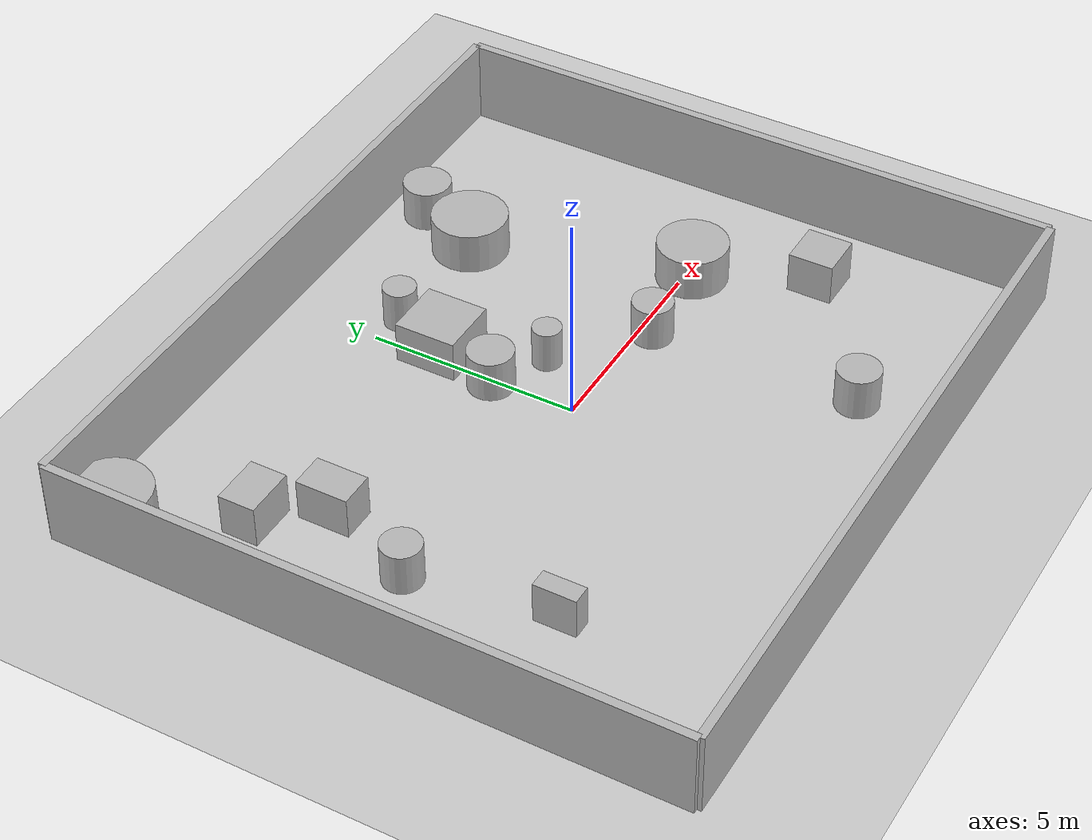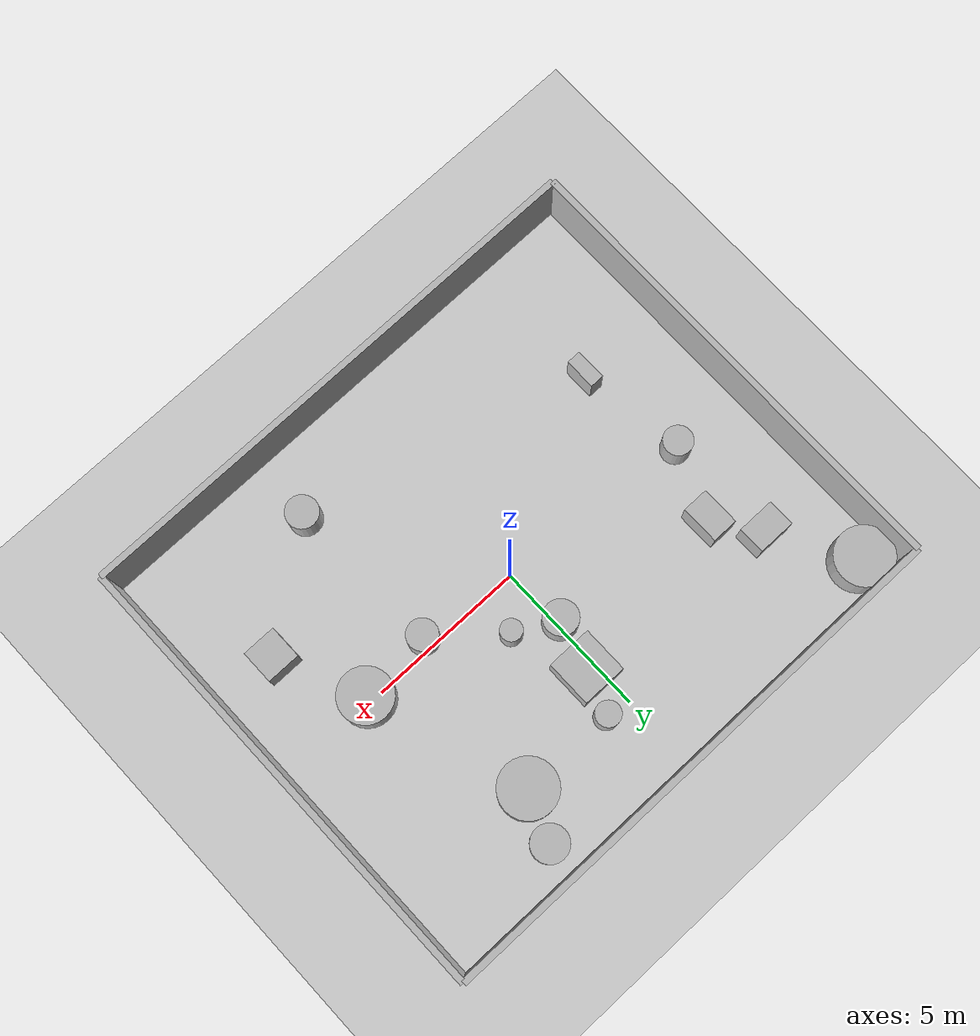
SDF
<?xml version="1.0"?>
<sdf version="1.6">
  <world name="env_87">

    <include><uri>model://ground_plane</uri></include>
    <include><uri>model://sun</uri></include>

    <!-- WALLS -->
    <model name="wall_north"><static>true</static><pose>0 7.412446972786869 1 0 0 0</pose>
      <link name="link"><collision name="collision">
        <geometry><box><size>17.123455979677402 0.2 2</size></box></geometry>
      </collision><visual name="visual">
        <geometry><box><size>17.123455979677402 0.2 2</size></box></geometry>
      </visual></link>
    </model>

    <model name="wall_south"><static>true</static><pose>0 -7.412446972786869 1 0 0 0</pose>
      <link name="link"><collision name="collision">
        <geometry><box><size>17.123455979677402 0.2 2</size></box></geometry>
      </collision><visual name="visual">
        <geometry><box><size>17.123455979677402 0.2 2</size></box></geometry>
      </visual></link>
    </model>

    <model name="wall_east"><static>true</static><pose>8.561727989838701 0 1 0 0 1.57</pose>
      <link name="link"><collision name="collision">
        <geometry><box><size>14.824893945573738 0.2 2</size></box></geometry>
      </collision><visual name="visual">
        <geometry><box><size>14.824893945573738 0.2 2</size></box></geometry>
      </visual></link>
    </model>

    <model name="wall_west"><static>true</static><pose>-8.561727989838701 0 1 0 0 1.57</pose>
      <link name="link"><collision name="collision">
        <geometry><box><size>14.824893945573738 0.2 2</size></box></geometry>
      </collision><visual name="visual">
        <geometry><box><size>14.824893945573738 0.2 2</size></box></geometry>
      </visual></link>
    </model>

    <!-- SENSOR -->

    <model name="lidar_sensor">
      <static>true</static>
      <pose>-3.7037397548065716 -0.33764008833407466 0.4 0 0 0</pose>
      <link name="link">
        <sensor name="lidar" type="ray">
          <pose>0 0 0 0 0 0</pose>
          <visualize>true</visualize>
          <always_on>true</always_on>
          <update_rate>10</update_rate>
          <ray>
            <scan><horizontal>
              <samples>90</samples>
              <resolution>1</resolution>
              <min_angle>-3.14159</min_angle>
              <max_angle>3.14159</max_angle>
            </horizontal></scan>
            <range><min>0.15</min><max>20.0</max><resolution>0.01</resolution></range>
          </ray>
          <plugin name="lidar_plugin" filename="liblidar_plugin.so"/>
        </sensor>
      </link>
    </model>

    <!-- OBSTACLES -->

    <model name="obstacle_0">
      <static>true</static>
      <pose>-5.233418437240611 2.7270778595490786 0.5 0 0 0</pose>
      <link name="link">
        <collision name="collision">
          <geometry><box><size>0.83 1.23 1.0</size></box></geometry>
        </collision>
        <visual name="visual">
          <geometry><box><size>0.83 1.23 1.0</size></box></geometry>
        </visual>
      </link>
    </model>

    <model name="obstacle_1">
      <static>true</static>
      <pose>-7.62489662363091 6.546410378304753 0.5 0 0 0</pose>
      <link name="link">
        <collision name="collision">
          <geometry><cylinder><radius>0.91</radius><length>1.0</length></cylinder></geometry>
        </collision>
        <visual name="visual">
          <geometry><cylinder><radius>0.91</radius><length>1.0</length></cylinder></geometry>
        </visual>
      </link>
    </model>

    <model name="obstacle_2">
      <static>true</static>
      <pose>1.156582110647257 1.2856869917716072 0.5 0 0 0</pose>
      <link name="link">
        <collision name="collision">
          <geometry><cylinder><radius>0.34</radius><length>1.0</length></cylinder></geometry>
        </collision>
        <visual name="visual">
          <geometry><cylinder><radius>0.34</radius><length>1.0</length></cylinder></geometry>
        </visual>
      </link>
    </model>

    <model name="obstacle_3">
      <static>true</static>
      <pose>3.075483656167501 -0.32262732376189174 0.5 0 0 0</pose>
      <link name="link">
        <collision name="collision">
          <geometry><cylinder><radius>0.48</radius><length>1.0</length></cylinder></geometry>
        </collision>
        <visual name="visual">
          <geometry><cylinder><radius>0.48</radius><length>1.0</length></cylinder></geometry>
        </visual>
      </link>
    </model>

    <model name="obstacle_4">
      <static>true</static>
      <pose>-6.176577238787507 4.045409829347246 0.5 0 0 0</pose>
      <link name="link">
        <collision name="collision">
          <geometry><box><size>1.2 0.87 1.0</size></box></geometry>
        </collision>
        <visual name="visual">
          <geometry><box><size>1.2 0.87 1.0</size></box></geometry>
        </visual>
      </link>
    </model>

    <model name="obstacle_5">
      <static>true</static>
      <pose>0.7786783943032951 4.843770767298446 0.5 0 0 0</pose>
      <link name="link">
        <collision name="collision">
          <geometry><cylinder><radius>0.39</radius><length>1.0</length></cylinder></geometry>
        </collision>
        <visual name="visual">
          <geometry><cylinder><radius>0.39</radius><length>1.0</length></cylinder></geometry>
        </visual>
      </link>
    </model>

    <model name="obstacle_6">
      <static>true</static>
      <pose>-5.6139556492050335 -2.8470840220336378 0.5 0 0 0</pose>
      <link name="link">
        <collision name="collision">
          <geometry><box><size>0.45 1.0 1.0</size></box></geometry>
        </collision>
        <visual name="visual">
          <geometry><box><size>0.45 1.0 1.0</size></box></geometry>
        </visual>
      </link>
    </model>

    <model name="obstacle_7">
      <static>true</static>
      <pose>3.810217809905465 4.831261215041058 0.5 0 0 0</pose>
      <link name="link">
        <collision name="collision">
          <geometry><cylinder><radius>0.9</radius><length>1.0</length></cylinder></geometry>
        </collision>
        <visual name="visual">
          <geometry><cylinder><radius>0.9</radius><length>1.0</length></cylinder></geometry>
        </visual>
      </link>
    </model>

    <model name="obstacle_8">
      <static>true</static>
      <pose>3.213558167966017 -5.263181860221413 0.5 0 0 0</pose>
      <link name="link">
        <collision name="collision">
          <geometry><cylinder><radius>0.51</radius><length>1.0</length></cylinder></geometry>
        </collision>
        <visual name="visual">
          <geometry><cylinder><radius>0.51</radius><length>1.0</length></cylinder></geometry>
        </visual>
      </link>
    </model>

    <model name="obstacle_9">
      <static>true</static>
      <pose>-0.11357347440852372 1.9722921025433902 0.5 0 0 0</pose>
      <link name="link">
        <collision name="collision">
          <geometry><cylinder><radius>0.54</radius><length>1.0</length></cylinder></geometry>
        </collision>
        <visual name="visual">
          <geometry><cylinder><radius>0.54</radius><length>1.0</length></cylinder></geometry>
        </visual>
      </link>
    </model>

    <model name="obstacle_10">
      <static>true</static>
      <pose>5.384870050377177 -0.13072308460824988 0.5 0 0 0</pose>
      <link name="link">
        <collision name="collision">
          <geometry><cylinder><radius>0.84</radius><length>1.0</length></cylinder></geometry>
        </collision>
        <visual name="visual">
          <geometry><cylinder><radius>0.84</radius><length>1.0</length></cylinder></geometry>
        </visual>
      </link>
    </model>

    <model name="obstacle_11">
      <static>true</static>
      <pose>6.556365277114031 -2.776765092362276 0.5 0 0 0</pose>
      <link name="link">
        <collision name="collision">
          <geometry><box><size>1.07 1.07 1.0</size></box></geometry>
        </collision>
        <visual name="visual">
          <geometry><box><size>1.07 1.07 1.0</size></box></geometry>
        </visual>
      </link>
    </model>

    <model name="obstacle_12">
      <static>true</static>
      <pose>0.3162397633174532 3.4849595489765495 0.5 0 0 0</pose>
      <link name="link">
        <collision name="collision">
          <geometry><box><size>1.43 1.47 1.0</size></box></geometry>
        </collision>
        <visual name="visual">
          <geometry><box><size>1.43 1.47 1.0</size></box></geometry>
        </visual>
      </link>
    </model>

    <model name="obstacle_13">
      <static>true</static>
      <pose>4.397400811380555 6.3340503140391835 0.5 0 0 0</pose>
      <link name="link">
        <collision name="collision">
          <geometry><cylinder><radius>0.57</radius><length>1.0</length></cylinder></geometry>
        </collision>
        <visual name="visual">
          <geometry><cylinder><radius>0.57</radius><length>1.0</length></cylinder></geometry>
        </visual>
      </link>
    </model>

    <model name="obstacle_14">
      <static>true</static>
      <pose>-6.105110423185566 0.5184487194466971 0.5 0 0 0</pose>
      <link name="link">
        <collision name="collision">
          <geometry><cylinder><radius>0.46</radius><length>1.0</length></cylinder></geometry>
        </collision>
        <visual name="visual">
          <geometry><cylinder><radius>0.46</radius><length>1.0</length></cylinder></geometry>
        </visual>
      </link>
    </model>

  </world>
</sdf>
